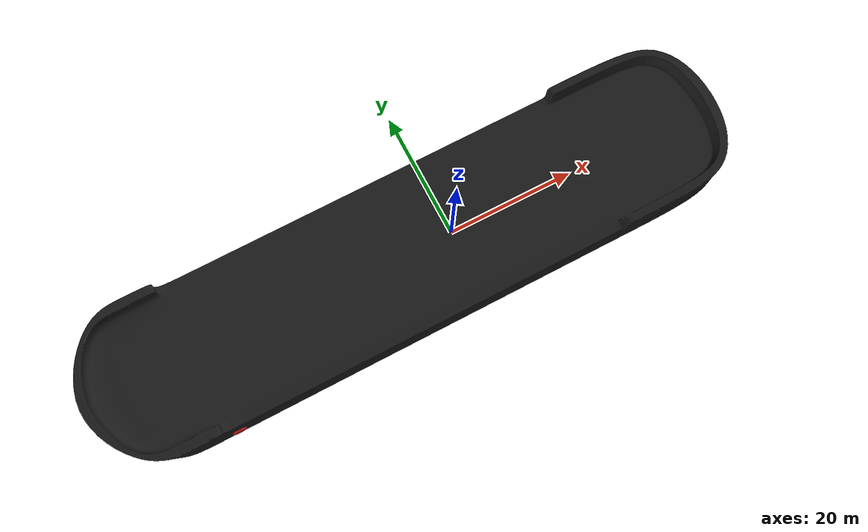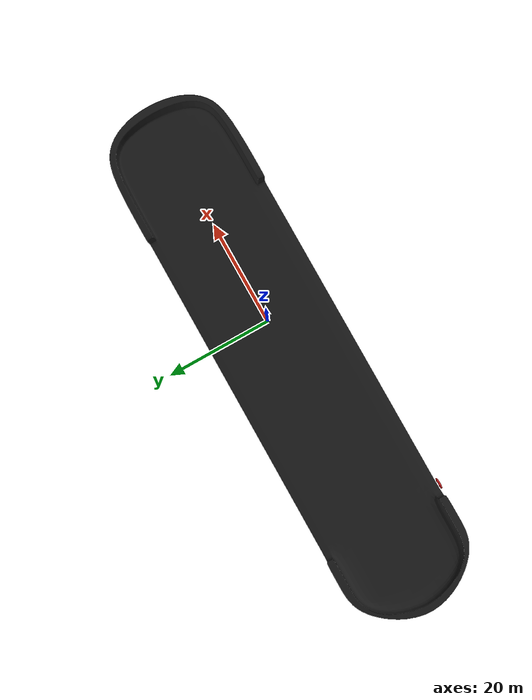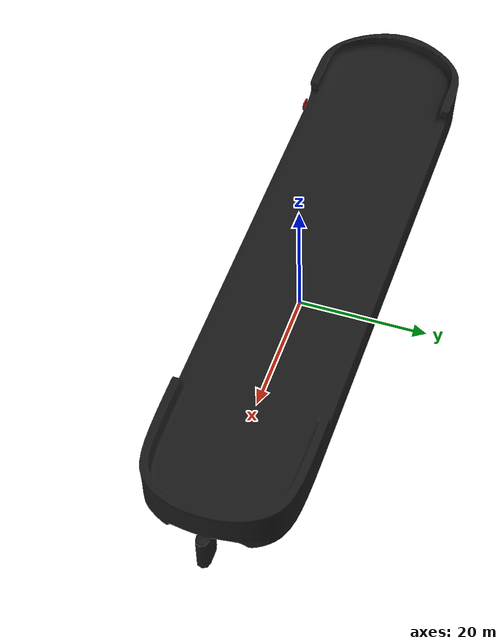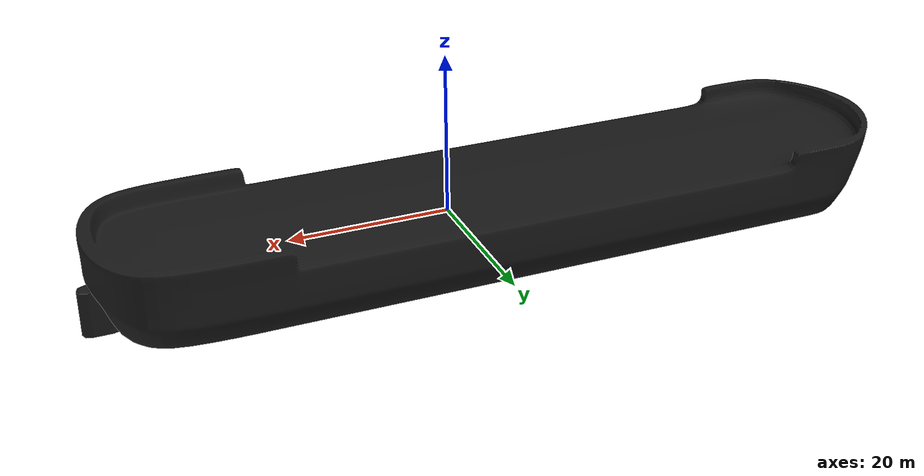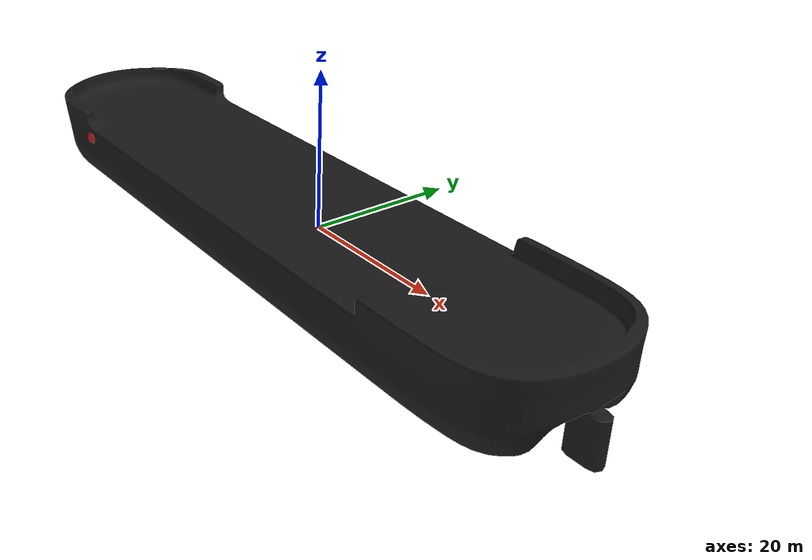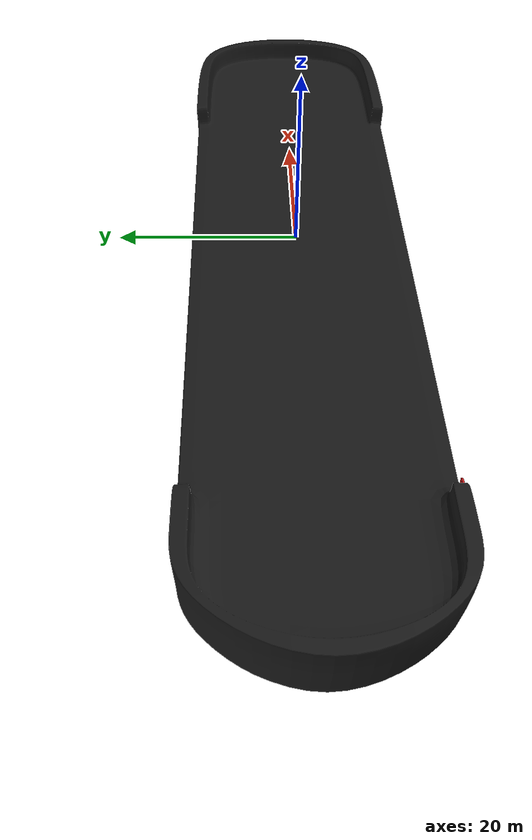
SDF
<?xml version="1.0" ?>
<sdf version="1.8">
    <world name="world_test">
        <gravity>0 0 0</gravity>
        <physics name="default_physics" type="ode">
            <max_step_size>0.001</max_step_size>
            <real_time_factor>1.0</real_time_factor>
        </physics>
        <plugin
            filename="gz-sim-physics-system"
            name="gz::sim::systems::Physics">
        </plugin>
        <plugin
            filename="gz-sim-user-commands-system"
            name="gz::sim::systems::UserCommands">
        </plugin>
        <plugin
            filename="gz-sim-scene-broadcaster-system"
            name="gz::sim::systems::SceneBroadcaster">
        </plugin>
        <plugin filename="gz-sim-imu-system"
            name="gz::sim::systems::Imu">
        </plugin>

        <light type="directional" name="sun">
            <cast_shadows>true</cast_shadows>
            <pose>0 0 10 0 0 0</pose>
            <diffuse>0.8 0.8 0.8 1</diffuse>
            <specular>0.2 0.2 0.2 1</specular>
            <attenuation>
                <range>1000</range>
                <constant>0.9</constant>
                <linear>0.01</linear>
                <quadratic>0.001</quadratic>
            </attenuation>
            <direction>-0.5 0.1 -0.9</direction>
        </light>

        <model name="ship">
        <static>true</static>
            <link name="body">
            <pose>0 0 0 0 0 0</pose>

            <visual name="visual">
                <geometry>
                <mesh>
                    <uri>model://ship/boat.obj</uri>
                </mesh>
                </geometry>
                <material>
                    <ambient>1.0 1.0 1.0 1</ambient>
                    <diffuse>0.1 0.1 0.1 1</diffuse>
                    <specular>1.0 1.0 1.0 1</specular>
                </material>
            </visual>

            <collision name="collision">
                <geometry>
                <mesh>
                    <uri>model://ship/boat.obj</uri>
                </mesh>
                </geometry>
            </collision>
        </link>
        </model>

        <model name="robot" canonical_link = 'robotlink'>
        <static>false</static>
            <link name="robotlink">
			<pose>-40 -12 1.5 0 1.571 -1.571</pose>
            <inertial>
                <mass>10</mass>
                <inertia>
                    <ixx>1</ixx>
                    <ixy>0</ixy>
                    <ixz>0</ixz>
                    <iyy>1</iyy>
                    <iyz>0</iyz>
                    <izz>1</izz>
                </inertia>
            </inertial>

            <visual name="visual">
                <geometry>
				<mesh>
                    <uri>model://RobotModel/RobotEverywhere.obj</uri>
				</mesh>
                </geometry>
                <material>
                    <ambient>0.8 0.1 0.1 1</ambient>
                    <diffuse>0.8 0.1 0.1 1</diffuse>
                    <specular>1.0 1.0 1.0 1</specular>
                </material>
            </visual>

            <collision name="collision">
                <geometry>
				<mesh>
                    <uri>model://RobotModel/RobotEverywhere.obj</uri>
				</mesh>
                </geometry>
            </collision>
            <sensor name="imu_sensor" type="imu">
                <always_on>1</always_on>
                <update_rate>10</update_rate>
                <visualize>true</visualize>
                <topic>imu</topic>
            </sensor>
            </link>

            <plugin name="gz::sim::systems::OdometryPublisher" filename = "gz-sim-odometry-publisher-system">
                <robotNamespace>/robot</robotNamespace>
                <always_on>1</always_on>
                <update_rate>10</update_rate>
                <topicName>odom</topicName>
                <frameId>odom</frameId>
                <parentFrameId>world</parentFrameId>
                <odometrySource>robotlink</odometrySource>
                <dimensions>3</dimensions>
            </plugin>

        </model>

    </world>
</sdf>
